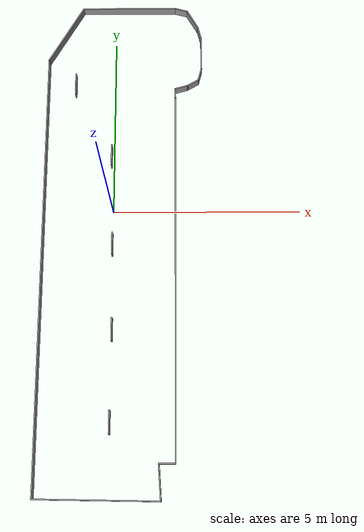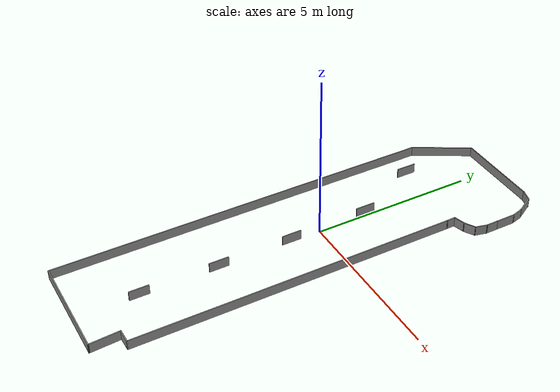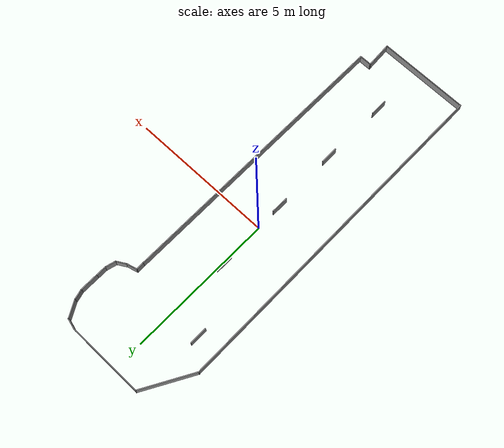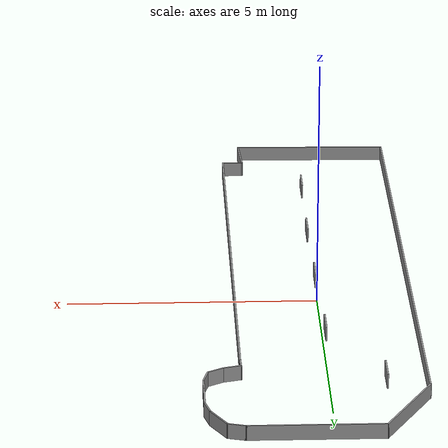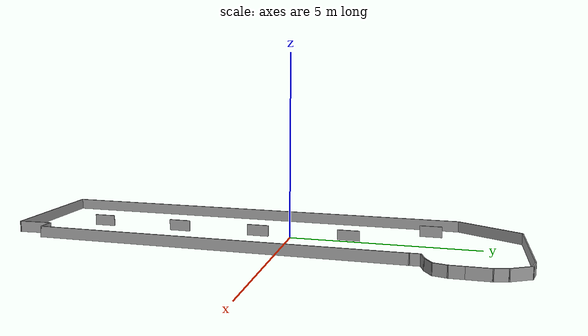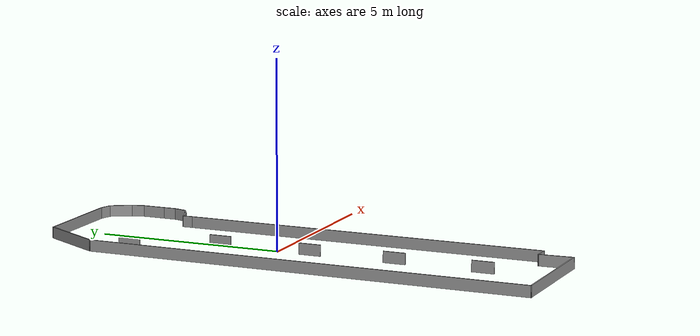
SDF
<?xml version='1.0'?>
<sdf version='1.7'>
  <model name='another_mock_supermarket'>
    <pose>0.262932 -0.733282 0 0 -0 0</pose>
    <link name='Wall_0'>
      <collision name='Wall_0_Collision'>
        <geometry>
          <box>
            <size>0.6 0.03 0.3</size>
          </box>
        </geometry>
        <pose>0 0 0.15 0 -0 0</pose>
      </collision>
      <visual name='Wall_0_Visual'>
        <pose>0 0 0.15 0 -0 0</pose>
        <geometry>
          <box>
            <size>0.6 0.03 0.3</size>
          </box>
        </geometry>
        <material>
          <script>
            <uri>file://media/materials/scripts/gazebo.material</uri>
            <name>Gazebo/Grey</name>
          </script>
          <ambient>0 0 0 1</ambient>
        </material>
        <meta>
          <layer>0</layer>
        </meta>
      </visual>
      <pose>-1.36317 4.42084 0 0 -0 -1.5708</pose>
    </link>
    <link name='Wall_10'>
      <collision name='Wall_10_Collision'>
        <geometry>
          <box>
            <size>11.88 0.03 0.3</size>
          </box>
        </geometry>
        <pose>0 0 0.15 0 -0 0</pose>
      </collision>
      <visual name='Wall_10_Visual'>
        <pose>0 0 0.15 0 -0 0</pose>
        <geometry>
          <box>
            <size>11.88 0.03 0.3</size>
          </box>
        </geometry>
        <material>
          <script>
            <uri>file://media/materials/scripts/gazebo.material</uri>
            <name>Gazebo/Grey</name>
          </script>
          <ambient>0 0 0 1</ambient>
        </material>
        <meta>
          <layer>0</layer>
        </meta>
      </visual>
      <pose>-2.12593 -0.770718 0 0 -0 1.5708</pose>
    </link>
    <link name='Wall_11'>
      <collision name='Wall_11_Collision'>
        <geometry>
          <box>
            <size>1.87987 0.03 0.3</size>
          </box>
        </geometry>
        <pose>0 0 0.15 0 -0 0</pose>
      </collision>
      <visual name='Wall_11_Visual'>
        <pose>0 0 0.15 0 -0 0</pose>
        <geometry>
          <box>
            <size>1.87987 0.03 0.3</size>
          </box>
        </geometry>
        <material>
          <script>
            <uri>file://media/materials/scripts/gazebo.material</uri>
            <name>Gazebo/Grey</name>
          </script>
          <ambient>0 0 0 1</ambient>
        </material>
        <meta>
          <layer>0</layer>
        </meta>
      </visual>
      <pose>-1.66343 5.95528 0 0 -0 1.04716</pose>
    </link>
    <link name='Wall_12'>
      <collision name='Wall_12_Collision'>
        <geometry>
          <box>
            <size>2.63 0.03 0.3</size>
          </box>
        </geometry>
        <pose>0 0 0.15 0 -0 0</pose>
      </collision>
      <visual name='Wall_12_Visual'>
        <pose>0 0 0.15 0 -0 0</pose>
        <geometry>
          <box>
            <size>2.63 0.03 0.3</size>
          </box>
        </geometry>
        <material>
          <script>
            <uri>file://media/materials/scripts/gazebo.material</uri>
            <name>Gazebo/Grey</name>
          </script>
          <ambient>0 0 0 1</ambient>
        </material>
        <meta>
          <layer>0</layer>
        </meta>
      </visual>
      <pose>0.099068 6.75628 0 0 -0 0</pose>
    </link>
    <link name='Wall_13'>
      <collision name='Wall_13_Collision'>
        <geometry>
          <box>
            <size>0.380743 0.03 0.3</size>
          </box>
        </geometry>
        <pose>0 0 0.15 0 -0 0</pose>
      </collision>
      <visual name='Wall_13_Visual'>
        <pose>0 0 0.15 0 -0 0</pose>
        <geometry>
          <box>
            <size>0.380743 0.03 0.3</size>
          </box>
        </geometry>
        <material>
          <script>
            <uri>file://media/materials/scripts/gazebo.material</uri>
            <name>Gazebo/Grey</name>
          </script>
          <ambient>0 0 0 1</ambient>
        </material>
        <meta>
          <layer>0</layer>
        </meta>
      </visual>
      <pose>1.56857 6.71128 0 0 -0 -0.2595</pose>
    </link>
    <link name='Wall_14'>
      <collision name='Wall_14_Collision'>
        <geometry>
          <box>
            <size>0.630333 0.03 0.3</size>
          </box>
        </geometry>
        <pose>0 0 0.15 0 -0 0</pose>
      </collision>
      <visual name='Wall_14_Visual'>
        <pose>0 0 0.15 0 -0 0</pose>
        <geometry>
          <box>
            <size>0.630333 0.03 0.3</size>
          </box>
        </geometry>
        <material>
          <script>
            <uri>file://media/materials/scripts/gazebo.material</uri>
            <name>Gazebo/Grey</name>
          </script>
          <ambient>0 0 0 1</ambient>
        </material>
        <meta>
          <layer>0</layer>
        </meta>
      </visual>
      <pose>1.88807 6.40628 0 0 -0 -1.04752</pose>
    </link>
    <link name='Wall_15'>
      <collision name='Wall_15_Collision'>
        <geometry>
          <box>
            <size>0.379777 0.03 0.3</size>
          </box>
        </geometry>
        <pose>0 0 0.15 0 -0 0</pose>
      </collision>
      <visual name='Wall_15_Visual'>
        <pose>0 0 0.15 0 -0 0</pose>
        <geometry>
          <box>
            <size>0.379777 0.03 0.3</size>
          </box>
        </geometry>
        <material>
          <script>
            <uri>file://media/materials/scripts/gazebo.material</uri>
            <name>Gazebo/Grey</name>
          </script>
          <ambient>0 0 0 1</ambient>
        </material>
        <meta>
          <layer>0</layer>
        </meta>
      </visual>
      <pose>2.08307 5.97728 0 0 -0 -1.31056</pose>
    </link>
    <link name='Wall_16'>
      <collision name='Wall_16_Collision'>
        <geometry>
          <box>
            <size>0.63 0.03 0.3</size>
          </box>
        </geometry>
        <pose>0 0 0.15 0 -0 0</pose>
      </collision>
      <visual name='Wall_16_Visual'>
        <pose>0 0 0.15 0 -0 0</pose>
        <geometry>
          <box>
            <size>0.63 0.03 0.3</size>
          </box>
        </geometry>
        <material>
          <script>
            <uri>file://media/materials/scripts/gazebo.material</uri>
            <name>Gazebo/Grey</name>
          </script>
          <ambient>0 0 0 1</ambient>
        </material>
        <meta>
          <layer>0</layer>
        </meta>
      </visual>
      <pose>2.12807 5.50828 0 0 -0 -1.5708</pose>
    </link>
    <link name='Wall_17'>
      <collision name='Wall_17_Collision'>
        <geometry>
          <box>
            <size>0.38 0.03 0.3</size>
          </box>
        </geometry>
        <pose>0 0 0.15 0 -0 0</pose>
      </collision>
      <visual name='Wall_17_Visual'>
        <pose>0 0 0.15 0 -0 0</pose>
        <geometry>
          <box>
            <size>0.38 0.03 0.3</size>
          </box>
        </geometry>
        <material>
          <script>
            <uri>file://media/materials/scripts/gazebo.material</uri>
            <name>Gazebo/Grey</name>
          </script>
          <ambient>0 0 0 1</ambient>
        </material>
        <meta>
          <layer>0</layer>
        </meta>
      </visual>
      <pose>2.12807 5.03328 0 0 -0 -1.5708</pose>
    </link>
    <link name='Wall_18'>
      <collision name='Wall_18_Collision'>
        <geometry>
          <box>
            <size>0.379777 0.03 0.3</size>
          </box>
        </geometry>
        <pose>0 0 0.15 0 -0 0</pose>
      </collision>
      <visual name='Wall_18_Visual'>
        <pose>0 0 0.15 0 -0 0</pose>
        <geometry>
          <box>
            <size>0.379777 0.03 0.3</size>
          </box>
        </geometry>
        <material>
          <script>
            <uri>file://media/materials/scripts/gazebo.material</uri>
            <name>Gazebo/Grey</name>
          </script>
          <ambient>0 0 0 1</ambient>
        </material>
        <meta>
          <layer>0</layer>
        </meta>
      </visual>
      <pose>2.08307 4.68928 0 0 -0 -1.83103</pose>
    </link>
    <link name='Wall_19'>
      <collision name='Wall_19_Collision'>
        <geometry>
          <box>
            <size>0.380374 0.03 0.3</size>
          </box>
        </geometry>
        <pose>0 0 0.15 0 -0 0</pose>
      </collision>
      <visual name='Wall_19_Visual'>
        <pose>0 0 0.15 0 -0 0</pose>
        <geometry>
          <box>
            <size>0.380374 0.03 0.3</size>
          </box>
        </geometry>
        <material>
          <script>
            <uri>file://media/materials/scripts/gazebo.material</uri>
            <name>Gazebo/Grey</name>
          </script>
          <ambient>0 0 0 1</ambient>
        </material>
        <meta>
          <layer>0</layer>
        </meta>
      </visual>
      <pose>1.88607 4.43278 0 0 -0 -2.61926</pose>
    </link>
    <link name='Wall_2'>
      <collision name='Wall_2_Collision'>
        <geometry>
          <box>
            <size>0.6 0.03 0.3</size>
          </box>
        </geometry>
        <pose>0 0 0.15 0 -0 0</pose>
      </collision>
      <visual name='Wall_2_Visual'>
        <pose>0 0 0.15 0 -0 0</pose>
        <geometry>
          <box>
            <size>0.6 0.03 0.3</size>
          </box>
        </geometry>
        <material>
          <script>
            <uri>file://media/materials/scripts/gazebo.material</uri>
            <name>Gazebo/Grey</name>
          </script>
          <ambient>0 0 0 1</ambient>
        </material>
        <meta>
          <layer>0</layer>
        </meta>
      </visual>
      <pose>-0.276653 -0.184717 0 0 -0 -1.5708</pose>
    </link>
    <link name='Wall_20'>
      <collision name='Wall_20_Collision'>
        <geometry>
          <box>
            <size>0.380036 0.03 0.3</size>
          </box>
        </geometry>
        <pose>0 0 0.15 0 -0 0</pose>
      </collision>
      <visual name='Wall_20_Visual'>
        <pose>0 0 0.15 0 -0 0</pose>
        <geometry>
          <box>
            <size>0.380036 0.03 0.3</size>
          </box>
        </geometry>
        <material>
          <script>
            <uri>file://media/materials/scripts/gazebo.material</uri>
            <name>Gazebo/Grey</name>
          </script>
          <ambient>0 0 0 1</ambient>
        </material>
        <meta>
          <layer>0</layer>
        </meta>
      </visual>
      <pose>1.56507 4.29978 0 0 -0 -2.8786</pose>
    </link>
    <link name='Wall_21'>
      <collision name='Wall_21_Collision'>
        <geometry>
          <box>
            <size>0.297092 0.03 0.3</size>
          </box>
        </geometry>
        <pose>0 0 0.15 0 -0 0</pose>
      </collision>
      <visual name='Wall_21_Visual'>
        <pose>0 0 0.15 0 -0 0</pose>
        <geometry>
          <box>
            <size>0.297092 0.03 0.3</size>
          </box>
        </geometry>
        <material>
          <script>
            <uri>file://media/materials/scripts/gazebo.material</uri>
            <name>Gazebo/Grey</name>
          </script>
          <ambient>0 0 0 1</ambient>
        </material>
        <meta>
          <layer>0</layer>
        </meta>
      </visual>
      <pose>1.39957 4.12078 0 0 -0 -1.54459</pose>
    </link>
    <link name='Wall_22'>
      <collision name='Wall_22_Collision'>
        <geometry>
          <box>
            <size>9.8801 0.03 0.3</size>
          </box>
        </geometry>
        <pose>0 0 0.15 0 -0 0</pose>
      </collision>
      <visual name='Wall_22_Visual'>
        <pose>0 0 0.15 0 -0 0</pose>
        <geometry>
          <box>
            <size>9.8801 0.03 0.3</size>
          </box>
        </geometry>
        <material>
          <script>
            <uri>file://media/materials/scripts/gazebo.material</uri>
            <name>Gazebo/Grey</name>
          </script>
          <ambient>0 0 0 1</ambient>
        </material>
        <meta>
          <layer>0</layer>
        </meta>
      </visual>
      <pose>1.40307 -0.937718 0 0 -0 -1.5708</pose>
    </link>
    <link name='Wall_23'>
      <collision name='Wall_23_Collision'>
        <geometry>
          <box>
            <size>0.44869 0.03 0.3</size>
          </box>
        </geometry>
        <pose>0 0 0.15 0 -0 0</pose>
      </collision>
      <visual name='Wall_23_Visual'>
        <pose>0 0 0.15 0 -0 0</pose>
        <geometry>
          <box>
            <size>0.44869 0.03 0.3</size>
          </box>
        </geometry>
        <material>
          <script>
            <uri>file://media/materials/scripts/gazebo.material</uri>
            <name>Gazebo/Grey</name>
          </script>
          <ambient>0 0 0 1</ambient>
        </material>
        <meta>
          <layer>0</layer>
        </meta>
      </visual>
      <pose>1.19357 -5.86022 0 0 -0 3.12966</pose>
    </link>
    <link name='Wall_24'>
      <collision name='Wall_24_Collision'>
        <geometry>
          <box>
            <size>0.934987 0.03 0.3</size>
          </box>
        </geometry>
        <pose>0 0 0.15 0 -0 0</pose>
      </collision>
      <visual name='Wall_24_Visual'>
        <pose>0 0 0.15 0 -0 0</pose>
        <geometry>
          <box>
            <size>0.934987 0.03 0.3</size>
          </box>
        </geometry>
        <material>
          <script>
            <uri>file://media/materials/scripts/gazebo.material</uri>
            <name>Gazebo/Grey</name>
          </script>
          <ambient>0 0 0 1</ambient>
        </material>
        <meta>
          <layer>0</layer>
        </meta>
      </visual>
      <pose>1.01107 -6.30922 0 0 -0 -1.51107</pose>
    </link>
    <link name='Wall_25'>
      <collision name='Wall_25_Collision'>
        <geometry>
          <box>
            <size>3.19467 0.03 0.3</size>
          </box>
        </geometry>
        <pose>0 0 0.15 0 -0 0</pose>
      </collision>
      <visual name='Wall_25_Visual'>
        <pose>0 0 0.15 0 -0 0</pose>
        <geometry>
          <box>
            <size>3.19467 0.03 0.3</size>
          </box>
        </geometry>
        <material>
          <script>
            <uri>file://media/materials/scripts/gazebo.material</uri>
            <name>Gazebo/Grey</name>
          </script>
          <ambient>0 0 0 1</ambient>
        </material>
        <meta>
          <layer>0</layer>
        </meta>
      </visual>
      <pose>-0.543932 -6.72822 0 0 -0 3.12105</pose>
    </link>
    <link name='Wall_4'>
      <collision name='Wall_4_Collision'>
        <geometry>
          <box>
            <size>0.6 0.03 0.3</size>
          </box>
        </geometry>
        <pose>0 0 0.15 0 -0 0</pose>
      </collision>
      <visual name='Wall_4_Visual'>
        <pose>0 0 0.15 0 -0 0</pose>
        <geometry>
          <box>
            <size>0.6 0.03 0.3</size>
          </box>
        </geometry>
        <material>
          <script>
            <uri>file://media/materials/scripts/gazebo.material</uri>
            <name>Gazebo/Grey</name>
          </script>
          <ambient>0 0 0 1</ambient>
        </material>
        <meta>
          <layer>0</layer>
        </meta>
      </visual>
      <pose>-0.333319 2.31106 0 0 -0 -1.5708</pose>
    </link>
    <link name='Wall_6'>
      <collision name='Wall_6_Collision'>
        <geometry>
          <box>
            <size>0.6 0.03 0.3</size>
          </box>
        </geometry>
        <pose>0 0 0.15 0 -0 0</pose>
      </collision>
      <visual name='Wall_6_Visual'>
        <pose>0 0 0.15 0 -0 0</pose>
        <geometry>
          <box>
            <size>0.6 0.03 0.3</size>
          </box>
        </geometry>
        <material>
          <script>
            <uri>file://media/materials/scripts/gazebo.material</uri>
            <name>Gazebo/Grey</name>
          </script>
          <ambient>0 0 0 1</ambient>
        </material>
        <meta>
          <layer>0</layer>
        </meta>
      </visual>
      <pose>-0.247509 -2.48066 0 0 -0 -1.5708</pose>
    </link>
    <link name='Wall_8'>
      <collision name='Wall_8_Collision'>
        <geometry>
          <box>
            <size>0.6 0.03 0.3</size>
          </box>
        </geometry>
        <pose>0 0 0.15 0 -0 0</pose>
      </collision>
      <visual name='Wall_8_Visual'>
        <pose>0 0 0.15 0 -0 0</pose>
        <geometry>
          <box>
            <size>0.6 0.03 0.3</size>
          </box>
        </geometry>
        <material>
          <script>
            <uri>file://media/materials/scripts/gazebo.material</uri>
            <name>Gazebo/Grey</name>
          </script>
          <ambient>0 0 0 1</ambient>
        </material>
        <meta>
          <layer>0</layer>
        </meta>
      </visual>
      <pose>-0.264812 -4.84042 0 0 -0 -1.5708</pose>
    </link>
    <static>1</static>
  </model>
</sdf>
